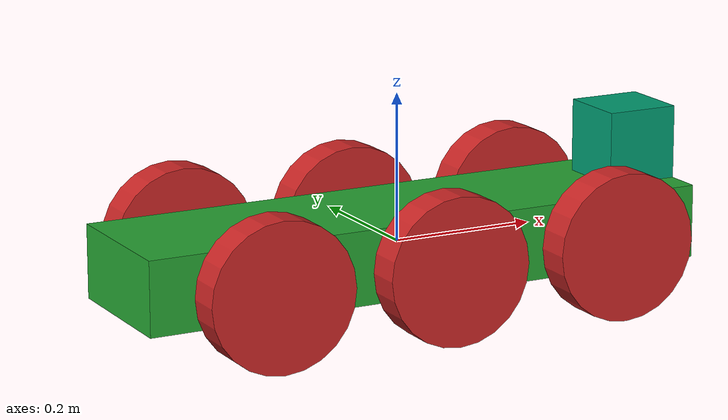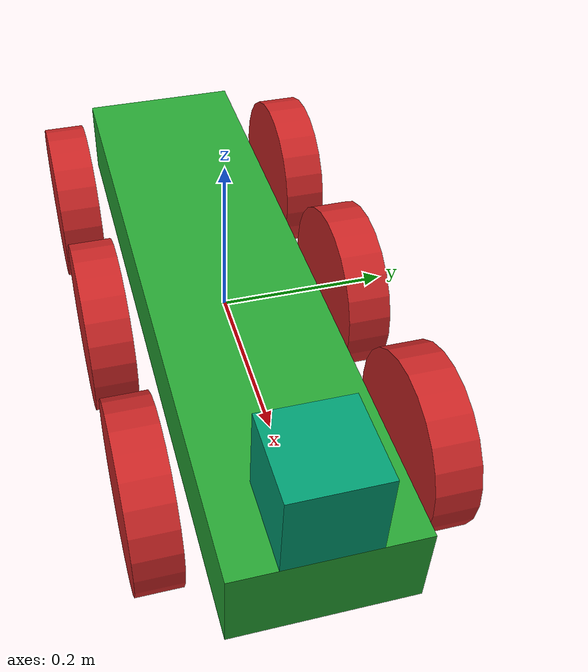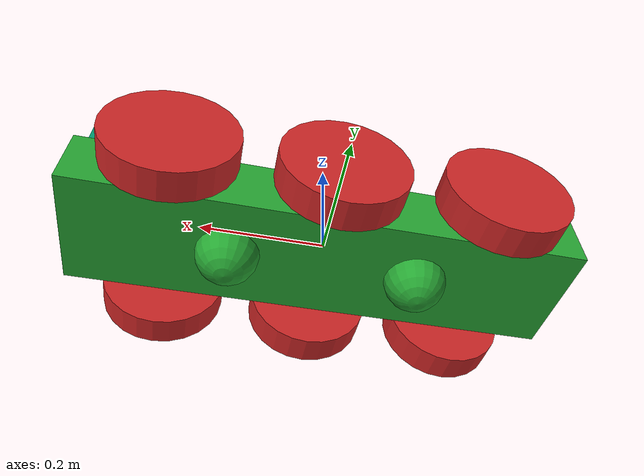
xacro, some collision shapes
<?xml version='1.0'?>

<robot name="my_robot" xmlns:xacro="http://www.ros.org/wiki/xacro">
<xacro:include filename="$(find my_robot)/urdf/my_robot.gazebo" />

  <gazebo reference="left_wheel">
    <material>Gazebo/Red</material>
  </gazebo>

  <gazebo reference="right_wheel">
    <material>Gazebo/Red</material>
  </gazebo>

  <gazebo reference="left_wheel_extra1">
    <material>Gazebo/Red</material>
  </gazebo>

  <gazebo reference="right_wheel_extra">
    <material>Gazebo/Red</material>
  </gazebo>

  <gazebo reference="left_wheel_extra">
    <material>Gazebo/Red</material>
  </gazebo>

  <gazebo reference="right_wheel_extra1">
    <material>Gazebo/Red</material>
  </gazebo>

  <gazebo reference="chassis">
    <material>Gazebo/Green</material>
  </gazebo>

  <link name="robot_footprint"></link>

  <joint name="robot_footprint_joint" type="fixed">
    <origin xyz="0 0 0" rpy="0 0 0" />
    <parent link="robot_footprint"/>
    <child link="chassis" />
  </joint>

  <joint name="camera_joint" type="fixed">
    <origin xyz="0.35 0 0" rpy="0 0 0" />
    <parent link="chassis"/>
    <child link="camera" />
    <axis xyz="0 1 0"/>
  </joint>

  <link name="camera">
    <inertial>
      <mass value="0.1"/>
      <origin xyz="0 0 0" rpy="0 0 0"/>
      <inertia
        ixx="1e-6" ixy="0.0" ixz="0.0"
        iyy="1e-6" iyz="0.0"
        izz="1e-6"
      />
    </inertial>

    <collision>
      <origin xyz="0 0 0" rpy="0 0 0"/>
      <geometry>
        <box size="0.05 0.05 0.05"/>
      </geometry>
    </collision>

    <visual>
      <origin xyz="0 0 0" rpy="0 0 0"/>
      <geometry>
        <box size="0.05 0.05 0.05"/>
      </geometry>
    </visual>

  </link>

  <joint name="hokuyo_joint" type="fixed">
    <origin xyz="0.35 0 0.1" rpy="0 0 0" />
    <parent link="chassis"/>
    <child link="hokuyo" />
    <axis xyz="0 1 0"/>
  </joint>

  <link name="hokuyo">
    <inertial>
      <mass value="1e-5"/>
      <origin xyz="0 0 0" rpy="0 0 0"/>
      <inertia
        ixx="1e-6" ixy="0.0" ixz="0.0"
        iyy="1e-6" iyz="0.0"
        izz="1e-6"
      />
    </inertial>

    <collision>
      <origin xyz="0 0 0" rpy="0 0 0"/>
      <geometry>
        <box size="0.1 0.1 0.1"/>
      </geometry>
    </collision>

    <visual>
      <origin xyz="0 0 0" rpy="0 0 0"/>
      <geometry>
        <mesh filename="package://my_robot/meshes/hokuyo.dae"/>
      </geometry>
    </visual>

  </link>

  <joint type="fixed" name="left_wheel_hinge1">
    <origin xyz="-0.25 -0.15 0" rpy="0 0 0" />
    <parent link="chassis"/>
    <child link="left_wheel_extra" />
    <axis xyz="0 1 0" rpy="0 0 0" />
    <limit effort="10000" velocity="1000" />
    <dynamics damping="1.0" friction="0.0" />
  </joint>

  <link name="left_wheel_extra">
    <inertial>
      <mass value="0.01"/>
      <origin xyz="0 0 0" rpy="0 1.5707 1.5707"/>
      <inertia
        ixx="0.1" ixy="0.0" ixz="0.0"
        iyy="0.1" iyz="0.0"
        izz="0.1"
      />
    </inertial>

    <collision>
      <origin xyz="0 0 0" rpy="0 1.5707 1.5707"/>
      <geometry>
        <cylinder radius="0.1" length="0.05"/>
      </geometry>
    </collision>

    <visual>
      <origin xyz="0 0 0" rpy="0 1.5707 1.5707"/>
      <geometry>
        <cylinder radius="0.1" length="0.05"/>
      </geometry>
    </visual>
  </link>

  <joint type="fixed" name="right_wheel_hinge1">
    <origin xyz="0.25 -0.15 0" rpy="0 0 0" />
    <parent link="chassis"/>
    <child link="right_wheel_extra" />
    <axis xyz="0 1 0" rpy="0 0 0" />
    <limit effort="10000" velocity="1000" />
    <dynamics damping="1.0" friction="0.0" />
  </joint>

  <link name="right_wheel_extra">
    <inertial>
      <mass value="0.01"/>
      <origin xyz="0 0 0" rpy="0 1.5707 1.5707"/>
      <inertia
        ixx="0.1" ixy="0.0" ixz="0.0"
        iyy="0.1" iyz="0.0"
        izz="0.1"
      />
    </inertial>

    <collision>
      <origin xyz="0 0 0" rpy="0 1.5707 1.5707"/>
      <geometry>
        <cylinder radius="0.1" length="0.05"/>
      </geometry>
    </collision>

    <visual>
      <origin xyz="0 0 0" rpy="0 1.5707 1.5707"/>
      <geometry>
        <cylinder radius="0.1" length="0.05"/>
      </geometry>
    </visual>
  </link>

<joint type="fixed" name="left_wheel_hinge2">
    <origin xyz="-0.25 0.15 0" rpy="0 0 0" />
    <parent link="chassis"/>
    <child link="left_wheel_extra1" />
    <axis xyz="0 1 0" rpy="0 0 0" />
    <limit effort="10000" velocity="1000" />
    <dynamics damping="1.0" friction="0.0" />
  </joint>

  <link name="left_wheel_extra1">
    <inertial>
      <mass value="0.01"/>
      <origin xyz="0 0 0" rpy="0 1.5707 1.5707"/>
      <inertia
        ixx="0.1" ixy="0.0" ixz="0.0"
        iyy="0.1" iyz="0.0"
        izz="0.1"
      />
    </inertial>

    <collision>
      <origin xyz="0 0 0" rpy="0 1.5707 1.5707"/>
      <geometry>
        <cylinder radius="0.1" length="0.05"/>
      </geometry>
    </collision>

    <visual>
      <origin xyz="0 0 0" rpy="0 1.5707 1.5707"/>
      <geometry>
        <cylinder radius="0.1" length="0.05"/>
      </geometry>
    </visual>
  </link>

  <joint type="fixed" name="right_wheel_hinge2">
    <origin xyz="0.25 .15 0" rpy="0 0 0" />
    <parent link="chassis"/>
    <child link="right_wheel_extra1" />
    <axis xyz="0 1 0" rpy="0 0 0" />
    <limit effort="10000" velocity="1000" />
    <dynamics damping="1.0" friction="0.0" />
  </joint>

  <link name="right_wheel_extra1">
    <inertial>
      <mass value="0.01"/>
      <origin xyz="0 0 0" rpy="0 1.5707 1.5707"/>
      <inertia
        ixx="0.1" ixy="0.0" ixz="0.0"
        iyy="0.1" iyz="0.0"
        izz="0.1"
      />
    </inertial>

    <collision>
      <origin xyz="0 0 0" rpy="0 1.5707 1.5707"/>
      <geometry>
        <cylinder radius="0.1" length="0.05"/>
      </geometry>
    </collision>

    <visual>
      <origin xyz="0 0 0" rpy="0 1.5707 1.5707"/>
      <geometry>
        <cylinder radius="0.1" length="0.05"/>
      </geometry>
    </visual>
  </link>

  <joint type="continuous" name="left_wheel_hinge">
    <origin xyz="0 0.15 0" rpy="0 0 0" />
    <parent link="chassis"/>
    <child link="left_wheel" />
    <axis xyz="0 1 0" rpy="0 0 0" />
    <limit effort="10000" velocity="1000" />
    <dynamics damping="1.0" friction="1.0" />
  </joint>

  <joint type="continuous" name="right_wheel_hinge">
    <origin xyz="0 -0.15 0" rpy="0 0 0" />
    <parent link="chassis"/>
    <child link="right_wheel" />
    <axis xyz="0 1 0" rpy="0 0 0" />
    <limit effort="10000" velocity="1000" />
    <dynamics damping="1.0" friction="1.0" />
  </joint>

  <link name="left_wheel">
    <inertial>
      <mass value="5"/>
      <origin xyz="0 0 0" rpy="0 1.5707 1.5707"/>
      <inertia
        ixx="0.1" ixy="0.0" ixz="0.0"
        iyy="0.1" iyz="0.0"
        izz="0.1"
      />
    </inertial>

    <collision>
      <origin xyz="0 0 0" rpy="0 1.5707 1.5707"/>
      <geometry>
        <cylinder radius="0.1" length="0.05"/>
      </geometry>
    </collision>

    <visual>
      <origin xyz="0 0 0" rpy="0 1.5707 1.5707"/>
      <geometry>
        <cylinder radius="0.1" length="0.05"/>
      </geometry>
    </visual>

  </link>

  <link name="right_wheel">
    <inertial>
      <mass value="5"/>
      <origin xyz="0 0 0" rpy="0 1.5707 1.5707"/>
      <inertia
        ixx="0.1" ixy="0.0" ixz="0.0"
        iyy="0.1" iyz="0.0"
        izz="0.1"
      />
    </inertial>

    <collision>
      <origin xyz="0 0 0" rpy="0 1.5707 1.5707"/>
      <geometry>
        <cylinder radius="0.1" length="0.05"/>
      </geometry>
    </collision>

    <visual>
      <origin xyz="0 0 0" rpy="0 1.5707 1.5707"/>
      <geometry>
        <cylinder radius="0.1" length="0.05"/>
      </geometry>
    </visual>

  </link>

  <link name='chassis'>
    <pose>0 0 0.1 0 0 0</pose>

    <inertial>
      <mass value="15.0"/>
      <origin xyz="0.0 0 0" rpy=" 0 0 0"/>
      <inertia
          ixx="0.1" ixy="0" ixz="0"
          iyy="0.1" iyz="0"
          izz="0.1"
      />
    </inertial>

    <collision name='collision'>
      <origin xyz="0 0 0" rpy=" 0 0 0"/>
      <geometry>
        <box size=".8 .2 .1"/>
      </geometry>
    </collision>

    <visual name='chassis_visual'>
      <origin xyz="0 0 0" rpy=" 0 0 0"/>
      <geometry>
        <box size=".8 .2 .1"/>
      </geometry>
    </visual>

    <collision name='back_caster_collision'>
      <origin xyz="-0.15 0 -0.05" rpy=" 0 0 0"/>
      <geometry>
        <sphere radius="0.0499"/>
      </geometry>
    </collision>

    <visual name='back_caster_visual'>
      <origin xyz="-0.15 0 -0.05" rpy=" 0 0 0"/>
      <geometry>
        <sphere radius="0.05"/>
      </geometry>
    </visual>

    <collision name='front_caster_collision'>
      <origin xyz="0.15 0 -0.05" rpy=" 0 0 0"/>
      <geometry>
        <sphere radius="0.0499"/>
      </geometry>
    </collision>

    <visual name='front_caster_visual'>
      <origin xyz="0.15 0 -0.05" rpy=" 0 0 0"/>
      <geometry>
        <sphere radius="0.05"/>
      </geometry>
    </visual>

  </link>

</robot>
